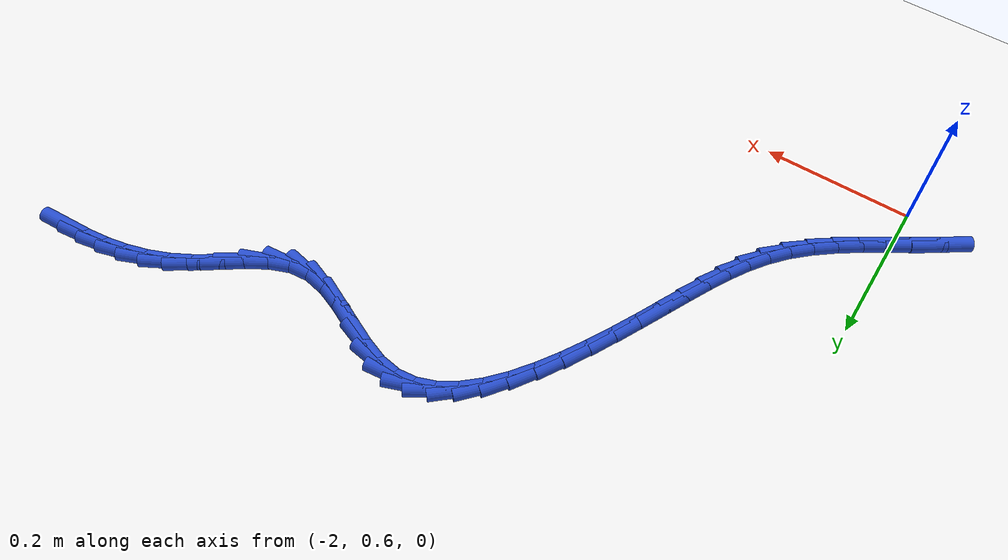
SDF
<sdf version="1.6">
 <world name="default">
  <model name="ground_plane">
   <static>1</static>
   <link name="link">
    <collision name="collision">
     <geometry><plane><normal>0 0 1</normal><size>100 100</size></plane></geometry>
     <surface><friction><ode><mu>100</mu><mu2>50</mu2></ode></friction></surface>
    </collision>
    <visual name="visual">
     <cast_shadows>0</cast_shadows>
     <geometry><plane><normal>0 0 1</normal><size>100 100</size></plane></geometry>
     <material>
      <script><uri>file://media/materials/scripts/gazebo.material</uri><name>Gazebo/WhiteGlow</name></script>
     </material>
    </visual>
   </link>
  </model>
  <model name="line">
   <link name="link_60">
    <pose>-1.085187348159308 1.2009274654604796 0.01 0 1.57 0.04395495021374767</pose>
    <collision name="collision">
     <geometry><cylinder><radius>0.01</radius><length>0.08</length></cylinder></geometry>
    </collision>
    <visual name="visual">
     <material>
      <script><name>Gazebo/Blue</name><uri>file://media/materials/scripts/gazebo.material</uri></script>
     </material>
     <geometry><cylinder><radius>0.01</radius><length>0.08</length></cylinder></geometry>
    </visual>
   </link>
   <link name="link_61">
    <pose>-1.115526653142268 1.1995930433251212 0.01 0 1.57 0.11116818963260791</pose>
    <collision name="collision">
     <geometry><cylinder><radius>0.01</radius><length>0.08</length></cylinder></geometry>
    </collision>
    <visual name="visual">
     <material>
      <script><name>Gazebo/Blue</name><uri>file://media/materials/scripts/gazebo.material</uri></script>
     </material>
     <geometry><cylinder><radius>0.01</radius><length>0.08</length></cylinder></geometry>
    </visual>
   </link>
   <link name="link_62">
    <pose>-1.1452933374717043 1.1962702354670298 0.01 0 1.57 0.19139769231253775</pose>
    <collision name="collision">
     <geometry><cylinder><radius>0.01</radius><length>0.08</length></cylinder></geometry>
    </collision>
    <visual name="visual">
     <material>
      <script><name>Gazebo/Blue</name><uri>file://media/materials/scripts/gazebo.material</uri></script>
     </material>
     <geometry><cylinder><radius>0.01</radius><length>0.08</length></cylinder></geometry>
    </visual>
   </link>
   <link name="link_63">
    <pose>-1.1744817270427543 1.190614412403318 0.01 0 1.57 0.28348838075562377</pose>
    <collision name="collision">
     <geometry><cylinder><radius>0.01</radius><length>0.08</length></cylinder></geometry>
    </collision>
    <visual name="visual">
     <material>
      <script><name>Gazebo/Blue</name><uri>file://media/materials/scripts/gazebo.material</uri></script>
     </material>
     <geometry><cylinder><radius>0.01</radius><length>0.08</length></cylinder></geometry>
    </visual>
   </link>
   <link name="link_64">
    <pose>-1.2030861477505543 1.1822809446510976 0.01 0 1.57 0.3851084420166745</pose>
    <collision name="collision">
     <geometry><cylinder><radius>0.01</radius><length>0.08</length></cylinder></geometry>
    </collision>
    <visual name="visual">
     <material>
      <script><name>Gazebo/Blue</name><uri>file://media/materials/scripts/gazebo.material</uri></script>
     </material>
     <geometry><cylinder><radius>0.01</radius><length>0.08</length></cylinder></geometry>
    </visual>
   </link>
   <link name="link_65">
    <pose>-1.2311009254902405 1.1709252027274804 0.01 0 1.57 0.4927442939534274</pose>
    <collision name="collision">
     <geometry><cylinder><radius>0.01</radius><length>0.08</length></cylinder></geometry>
    </collision>
    <visual name="visual">
     <material>
      <script><name>Gazebo/Blue</name><uri>file://media/materials/scripts/gazebo.material</uri></script>
     </material>
     <geometry><cylinder><radius>0.01</radius><length>0.08</length></cylinder></geometry>
    </visual>
   </link>
   <link name="link_66">
    <pose>-1.2585204510875778 1.1562031555582493 0.01 0 1.57 0.5822959400865786</pose>
    <collision name="collision">
     <geometry><cylinder><radius>0.01</radius><length>0.08</length></cylinder></geometry>
    </collision>
    <visual name="visual">
     <material>
      <script><name>Gazebo/Blue</name><uri>file://media/materials/scripts/gazebo.material</uri></script>
     </material>
     <geometry><cylinder><radius>0.01</radius><length>0.08</length></cylinder></geometry>
    </visual>
   </link>
   <link name="link_67">
    <pose>-1.2854174481959855 1.1384926970784308 0.01 0 1.57 0.5986438175385088</pose>
    <collision name="collision">
     <geometry><cylinder><radius>0.01</radius><length>0.08</length></cylinder></geometry>
    </collision>
    <visual name="visual">
     <material>
      <script><name>Gazebo/Blue</name><uri>file://media/materials/scripts/gazebo.material</uri></script>
     </material>
     <geometry><cylinder><radius>0.01</radius><length>0.08</length></cylinder></geometry>
    </visual>
   </link>
   <link name="link_68">
    <pose>-1.312094992209717 1.1202946713016098 0.01 0 1.57 0.5325506302736825</pose>
    <collision name="collision">
     <geometry><cylinder><radius>0.01</radius><length>0.08</length></cylinder></geometry>
    </collision>
    <visual name="visual">
     <material>
      <script><name>Gazebo/Blue</name><uri>file://media/materials/scripts/gazebo.material</uri></script>
     </material>
     <geometry><cylinder><radius>0.01</radius><length>0.08</length></cylinder></geometry>
    </visual>
   </link>
   <link name="link_69">
    <pose>-1.3388982878914208 1.1044981917010415 0.01 0 1.57 0.3676759257074685</pose>
    <collision name="collision">
     <geometry><cylinder><radius>0.01</radius><length>0.08</length></cylinder></geometry>
    </collision>
    <visual name="visual">
     <material>
      <script><name>Gazebo/Blue</name><uri>file://media/materials/scripts/gazebo.material</uri></script>
     </material>
     <geometry><cylinder><radius>0.01</radius><length>0.08</length></cylinder></geometry>
    </visual>
   </link>
   <link name="link_70">
    <pose>-1.3661725400037468 1.0939923717499827 0.01 0 1.57 0.08561810151876548</pose>
    <collision name="collision">
     <geometry><cylinder><radius>0.01</radius><length>0.08</length></cylinder></geometry>
    </collision>
    <visual name="visual">
     <material>
      <script><name>Gazebo/Blue</name><uri>file://media/materials/scripts/gazebo.material</uri></script>
     </material>
     <geometry><cylinder><radius>0.01</radius><length>0.08</length></cylinder></geometry>
    </visual>
   </link>
   <link name="link_71">
    <pose>-1.3942524718715372 1.0915823295072533 0.01 0 1.57 -0.20186537929559234</pose>
    <collision name="collision">
     <geometry><cylinder><radius>0.01</radius><length>0.08</length></cylinder></geometry>
    </collision>
    <visual name="visual">
     <material>
      <script><name>Gazebo/Blue</name><uri>file://media/materials/scripts/gazebo.material</uri></script>
     </material>
     <geometry><cylinder><radius>0.01</radius><length>0.08</length></cylinder></geometry>
    </visual>
   </link>
   <link name="link_72">
    <pose>-1.4231512797092571 1.0974965515244197 0.01 0 1.57 -0.3725081465373291</pose>
    <collision name="collision">
     <geometry><cylinder><radius>0.01</radius><length>0.08</length></cylinder></geometry>
    </collision>
    <visual name="visual">
     <material>
      <script><name>Gazebo/Blue</name><uri>file://media/materials/scripts/gazebo.material</uri></script>
     </material>
     <geometry><cylinder><radius>0.01</radius><length>0.08</length></cylinder></geometry>
    </visual>
   </link>
   <link name="link_73">
    <pose>-1.4525083441110025 1.1089678668353984 0.01 0 1.57 -0.4465439583156662</pose>
    <collision name="collision">
     <geometry><cylinder><radius>0.01</radius><length>0.08</length></cylinder></geometry>
    </collision>
    <visual name="visual">
     <material>
      <script><name>Gazebo/Blue</name><uri>file://media/materials/scripts/gazebo.material</uri></script>
     </material>
     <geometry><cylinder><radius>0.01</radius><length>0.08</length></cylinder></geometry>
    </visual>
   </link>
   <link name="link_74">
    <pose>-1.481942032042794 1.1230607069286584 0.01 0 1.57 -0.4418413825627863</pose>
    <collision name="collision">
     <geometry><cylinder><radius>0.01</radius><length>0.08</length></cylinder></geometry>
    </collision>
    <visual name="visual">
     <material>
      <script><name>Gazebo/Blue</name><uri>file://media/materials/scripts/gazebo.material</uri></script>
     </material>
     <geometry><cylinder><radius>0.01</radius><length>0.08</length></cylinder></geometry>
    </visual>
   </link>
   <link name="link_75">
    <pose>-1.511070710470651 1.136839503292667 0.01 0 1.57 -0.3545540446968152</pose>
    <collision name="collision">
     <geometry><cylinder><radius>0.01</radius><length>0.08</length></cylinder></geometry>
    </collision>
    <visual name="visual">
     <material>
      <script><name>Gazebo/Blue</name><uri>file://media/materials/scripts/gazebo.material</uri></script>
     </material>
     <geometry><cylinder><radius>0.01</radius><length>0.08</length></cylinder></geometry>
    </visual>
   </link>
   <link name="link_76">
    <pose>-1.5395127463605933 1.1473686874158924 0.01 0 1.57 -0.16047707685449916</pose>
    <collision name="collision">
     <geometry><cylinder><radius>0.01</radius><length>0.08</length></cylinder></geometry>
    </collision>
    <visual name="visual">
     <material>
      <script><name>Gazebo/Blue</name><uri>file://media/materials/scripts/gazebo.material</uri></script>
     </material>
     <geometry><cylinder><radius>0.01</radius><length>0.08</length></cylinder></geometry>
    </visual>
   </link>
   <link name="link_77">
    <pose>-1.566896492302271 1.1518012669873643 0.01 0 1.57 0.10212877196327987</pose>
    <collision name="collision">
     <geometry><cylinder><radius>0.01</radius><length>0.08</length></cylinder></geometry>
    </collision>
    <visual name="visual">
     <material>
      <script><name>Gazebo/Blue</name><uri>file://media/materials/scripts/gazebo.material</uri></script>
     </material>
     <geometry><cylinder><radius>0.01</radius><length>0.08</length></cylinder></geometry>
    </visual>
   </link>
   <link name="link_78">
    <pose>-1.593056604441792 1.1491202390760835 0.01 0 1.57 0.3491819905784765</pose>
    <collision name="collision">
     <geometry><cylinder><radius>0.01</radius><length>0.08</length></cylinder></geometry>
    </collision>
    <visual name="visual">
     <material>
      <script><name>Gazebo/Blue</name><uri>file://media/materials/scripts/gazebo.material</uri></script>
     </material>
     <geometry><cylinder><radius>0.01</radius><length>0.08</length></cylinder></geometry>
    </visual>
   </link>
   <link name="link_79">
    <pose>-1.618021840341892 1.1400303526062594 0.01 0 1.57 0.5539927267310943</pose>
    <collision name="collision">
     <geometry><cylinder><radius>0.01</radius><length>0.08</length></cylinder></geometry>
    </collision>
    <visual name="visual">
     <material>
      <script><name>Gazebo/Blue</name><uri>file://media/materials/scripts/gazebo.material</uri></script>
     </material>
     <geometry><cylinder><radius>0.01</radius><length>0.08</length></cylinder></geometry>
    </visual>
   </link>
   <link name="link_80">
    <pose>-1.6418284999169523 1.12530325997019 0.01 0 1.57 0.7123976993529778</pose>
    <collision name="collision">
     <geometry><cylinder><radius>0.01</radius><length>0.08</length></cylinder></geometry>
    </collision>
    <visual name="visual">
     <material>
      <script><name>Gazebo/Blue</name><uri>file://media/materials/scripts/gazebo.material</uri></script>
     </material>
     <geometry><cylinder><radius>0.01</radius><length>0.08</length></cylinder></geometry>
    </visual>
   </link>
   <link name="link_81">
    <pose>-1.6645128830813525 1.1057106135601704 0.01 0 1.57 0.8314766694298645</pose>
    <collision name="collision">
     <geometry><cylinder><radius>0.01</radius><length>0.08</length></cylinder></geometry>
    </collision>
    <visual name="visual">
     <material>
      <script><name>Gazebo/Blue</name><uri>file://media/materials/scripts/gazebo.material</uri></script>
     </material>
     <geometry><cylinder><radius>0.01</radius><length>0.08</length></cylinder></geometry>
    </visual>
   </link>
   <link name="link_82">
    <pose>-1.6861112897494714 1.082024065768499 0.01 0 1.57 0.9204087137331076</pose>
    <collision name="collision">
     <geometry><cylinder><radius>0.01</radius><length>0.08</length></cylinder></geometry>
    </collision>
    <visual name="visual">
     <material>
      <script><name>Gazebo/Blue</name><uri>file://media/materials/scripts/gazebo.material</uri></script>
     </material>
     <geometry><cylinder><radius>0.01</radius><length>0.08</length></cylinder></geometry>
    </visual>
   </link>
   <link name="link_83">
    <pose>-1.7066600198356894 1.0550152689874717 0.01 0 1.57 0.9868072513426621</pose>
    <collision name="collision">
     <geometry><cylinder><radius>0.01</radius><length>0.08</length></cylinder></geometry>
    </collision>
    <visual name="visual">
     <material>
      <script><name>Gazebo/Blue</name><uri>file://media/materials/scripts/gazebo.material</uri></script>
     </material>
     <geometry><cylinder><radius>0.01</radius><length>0.08</length></cylinder></geometry>
    </visual>
   </link>
   <link name="link_84">
    <pose>-1.7261953732543864 1.025455875609386 0.01 0 1.57 1.0361386381879243</pose>
    <collision name="collision">
     <geometry><cylinder><radius>0.01</radius><length>0.08</length></cylinder></geometry>
    </collision>
    <visual name="visual">
     <material>
      <script><name>Gazebo/Blue</name><uri>file://media/materials/scripts/gazebo.material</uri></script>
     </material>
     <geometry><cylinder><radius>0.01</radius><length>0.08</length></cylinder></geometry>
    </visual>
   </link>
   <link name="link_85">
    <pose>-1.744753649919942 0.9941175380265378 0.01 0 1.57 1.072059082955132</pose>
    <collision name="collision">
     <geometry><cylinder><radius>0.01</radius><length>0.08</length></cylinder></geometry>
    </collision>
    <visual name="visual">
     <material>
      <script><name>Gazebo/Blue</name><uri>file://media/materials/scripts/gazebo.material</uri></script>
     </material>
     <geometry><cylinder><radius>0.01</radius><length>0.08</length></cylinder></geometry>
    </visual>
   </link>
   <link name="link_86">
    <pose>-1.7623711497467354 0.961771908631225 0.01 0 1.57 1.096831267651644</pose>
    <collision name="collision">
     <geometry><cylinder><radius>0.01</radius><length>0.08</length></cylinder></geometry>
    </collision>
    <visual name="visual">
     <material>
      <script><name>Gazebo/Blue</name><uri>file://media/materials/scripts/gazebo.material</uri></script>
     </material>
     <geometry><cylinder><radius>0.01</radius><length>0.08</length></cylinder></geometry>
    </visual>
   </link>
   <link name="link_87">
    <pose>-1.7790841726491466 0.9291906398157439 0.01 0 1.57 1.1115968334248496</pose>
    <collision name="collision">
     <geometry><cylinder><radius>0.01</radius><length>0.08</length></cylinder></geometry>
    </collision>
    <visual name="visual">
     <material>
      <script><name>Gazebo/Blue</name><uri>file://media/materials/scripts/gazebo.material</uri></script>
     </material>
     <geometry><cylinder><radius>0.01</radius><length>0.08</length></cylinder></geometry>
    </visual>
   </link>
   <link name="link_88">
    <pose>-1.7949290185415563 0.8971453839723917 0.01 0 1.57 1.1164120285954688</pose>
    <collision name="collision">
     <geometry><cylinder><radius>0.01</radius><length>0.08</length></cylinder></geometry>
    </collision>
    <visual name="visual">
     <material>
      <script><name>Gazebo/Blue</name><uri>file://media/materials/scripts/gazebo.material</uri></script>
     </material>
     <geometry><cylinder><radius>0.01</radius><length>0.08</length></cylinder></geometry>
    </visual>
   </link>
   <link name="link_89">
    <pose>-1.809945487058463 0.8664037865100042 0.01 0 1.57 1.107065767393095</pose>
    <collision name="collision">
     <geometry><cylinder><radius>0.01</radius><length>0.08</length></cylinder></geometry>
    </collision>
    <visual name="visual">
     <material>
      <script><name>Gazebo/Blue</name><uri>file://media/materials/scripts/gazebo.material</uri></script>
     </material>
     <geometry><cylinder><radius>0.01</radius><length>0.08</length></cylinder></geometry>
    </visual>
   </link>
   <link name="link_90">
    <pose>-1.8244312780517158 0.8374382115378021 0.01 0 1.57 1.0759564217281719</pose>
    <collision name="collision">
     <geometry><cylinder><radius>0.01</radius><length>0.08</length></cylinder></geometry>
    </collision>
    <visual name="visual">
     <material>
      <script><name>Gazebo/Blue</name><uri>file://media/materials/scripts/gazebo.material</uri></script>
     </material>
     <geometry><cylinder><radius>0.01</radius><length>0.08</length></cylinder></geometry>
    </visual>
   </link>
   <link name="link_91">
    <pose>-1.839114134003092 0.8102286484475174 0.01 0 1.57 1.02074386564452</pose>
    <collision name="collision">
     <geometry><cylinder><radius>0.01</radius><length>0.08</length></cylinder></geometry>
    </collision>
    <visual name="visual">
     <material>
      <script><name>Gazebo/Blue</name><uri>file://media/materials/scripts/gazebo.material</uri></script>
     </material>
     <geometry><cylinder><radius>0.01</radius><length>0.08</length></cylinder></geometry>
    </visual>
   </link>
   <link name="link_92">
    <pose>-1.8547625729749808 0.7847084008756011 0.01 0 1.57 0.9419330810025008</pose>
    <collision name="collision">
     <geometry><cylinder><radius>0.01</radius><length>0.08</length></cylinder></geometry>
    </collision>
    <visual name="visual">
     <material>
      <script><name>Gazebo/Blue</name><uri>file://media/materials/scripts/gazebo.material</uri></script>
     </material>
     <geometry><cylinder><radius>0.01</radius><length>0.08</length></cylinder></geometry>
    </visual>
   </link>
   <link name="link_93">
    <pose>-1.8721451130297673 0.7608107724585027 0.01 0 1.57 0.8435076346484651</pose>
    <collision name="collision">
     <geometry><cylinder><radius>0.01</radius><length>0.08</length></cylinder></geometry>
    </collision>
    <visual name="visual">
     <material>
      <script><name>Gazebo/Blue</name><uri>file://media/materials/scripts/gazebo.material</uri></script>
     </material>
     <geometry><cylinder><radius>0.01</radius><length>0.08</length></cylinder></geometry>
    </visual>
   </link>
   <link name="link_94">
    <pose>-1.8920302722298388 0.738469066832674 0.01 0 1.57 0.737944007233559</pose>
    <collision name="collision">
     <geometry><cylinder><radius>0.01</radius><length>0.08</length></cylinder></geometry>
    </collision>
    <visual name="visual">
     <material>
      <script><name>Gazebo/Blue</name><uri>file://media/materials/scripts/gazebo.material</uri></script>
     </material>
     <geometry><cylinder><radius>0.01</radius><length>0.08</length></cylinder></geometry>
    </visual>
   </link>
   <link name="link_95">
    <pose>-1.9149916575141142 0.7175896718264948 0.01 0 1.57 0.6552525140161803</pose>
    <collision name="collision">
     <geometry><cylinder><radius>0.01</radius><length>0.08</length></cylinder></geometry>
    </collision>
    <visual name="visual">
     <material>
      <script><name>Gazebo/Blue</name><uri>file://media/materials/scripts/gazebo.material</uri></script>
     </material>
     <geometry><cylinder><radius>0.01</radius><length>0.08</length></cylinder></geometry>
    </visual>
   </link>
   <link name="link_96">
    <pose>-1.9405652743212825 0.6979356900502623 0.01 0 1.57 0.5995693239552482</pose>
    <collision name="collision">
     <geometry><cylinder><radius>0.01</radius><length>0.08</length></cylinder></geometry>
    </collision>
    <visual name="visual">
     <material>
      <script><name>Gazebo/Blue</name><uri>file://media/materials/scripts/gazebo.material</uri></script>
     </material>
     <geometry><cylinder><radius>0.01</radius><length>0.08</length></cylinder></geometry>
    </visual>
   </link>
   <link name="link_97">
    <pose>-1.9679432217066783 0.6792227331448326 0.01 0 1.57 0.5667310225517492</pose>
    <collision name="collision">
     <geometry><cylinder><radius>0.01</radius><length>0.08</length></cylinder></geometry>
    </collision>
    <visual name="visual">
     <material>
      <script><name>Gazebo/Blue</name><uri>file://media/materials/scripts/gazebo.material</uri></script>
     </material>
     <geometry><cylinder><radius>0.01</radius><length>0.08</length></cylinder></geometry>
    </visual>
   </link>
   <link name="link_98">
    <pose>-1.9963173749528988 0.6611663818496745 0.01 0 1.57 0.5543779032320781</pose>
    <collision name="collision">
     <geometry><cylinder><radius>0.01</radius><length>0.08</length></cylinder></geometry>
    </collision>
    <visual name="visual">
     <material>
      <script><name>Gazebo/Blue</name><uri>file://media/materials/scripts/gazebo.material</uri></script>
     </material>
     <geometry><cylinder><radius>0.01</radius><length>0.08</length></cylinder></geometry>
    </visual>
   </link>
   <link name="link_99">
    <pose>-2.024879609342542 0.6434822169042567 0.01 0 1.57 0.5620027126396031</pose>
    <collision name="collision">
     <geometry><cylinder><radius>0.01</radius><length>0.08</length></cylinder></geometry>
    </collision>
    <visual name="visual">
     <material>
      <script><name>Gazebo/Blue</name><uri>file://media/materials/scripts/gazebo.material</uri></script>
     </material>
     <geometry><cylinder><radius>0.01</radius><length>0.08</length></cylinder></geometry>
    </visual>
   </link>
   <link name="link_100">
    <pose>-2.052821800158206 0.6258858190480484 0.01 0 1.57 0.5910522824642677</pose>
    <collision name="collision">
     <geometry><cylinder><radius>0.01</radius><length>0.08</length></cylinder></geometry>
    </collision>
    <visual name="visual">
     <material>
      <script><name>Gazebo/Blue</name><uri>file://media/materials/scripts/gazebo.material</uri></script>
     </material>
     <geometry><cylinder><radius>0.01</radius><length>0.08</length></cylinder></geometry>
    </visual>
   </link>
  </model>
 </world>
</sdf>
